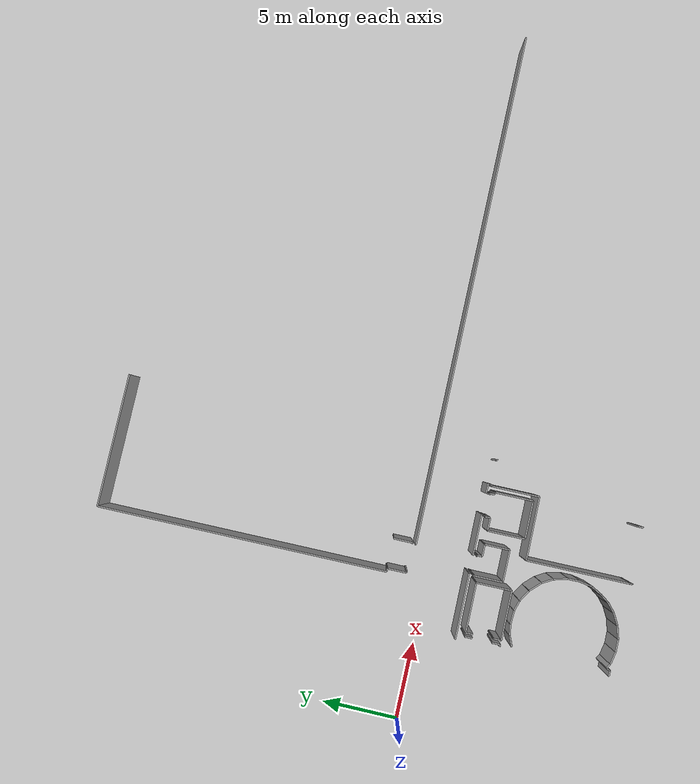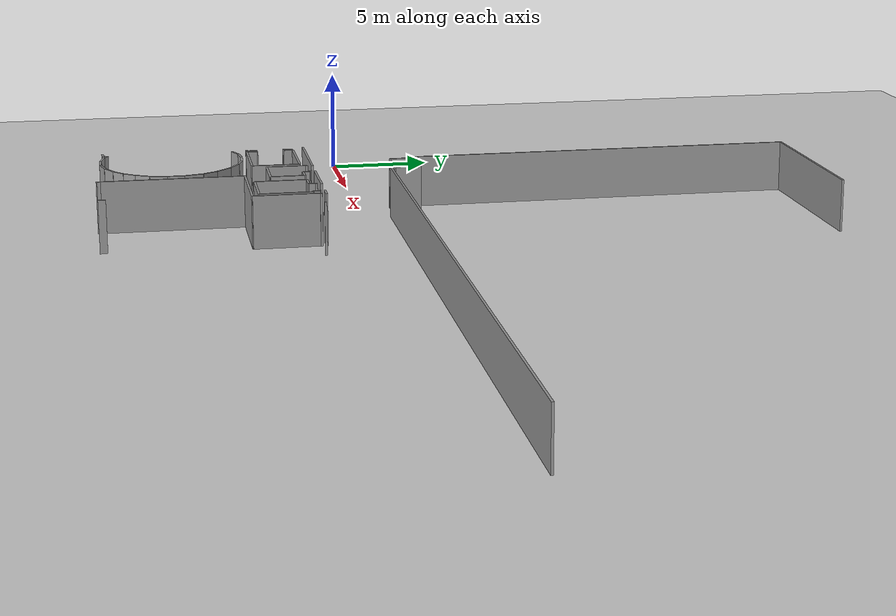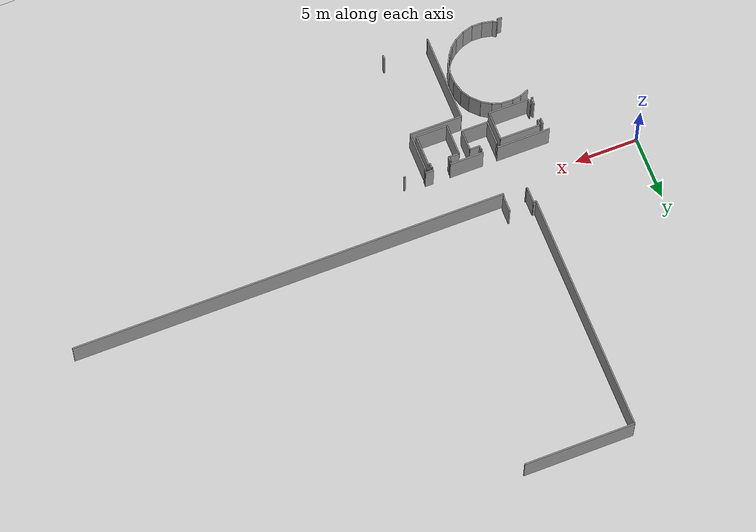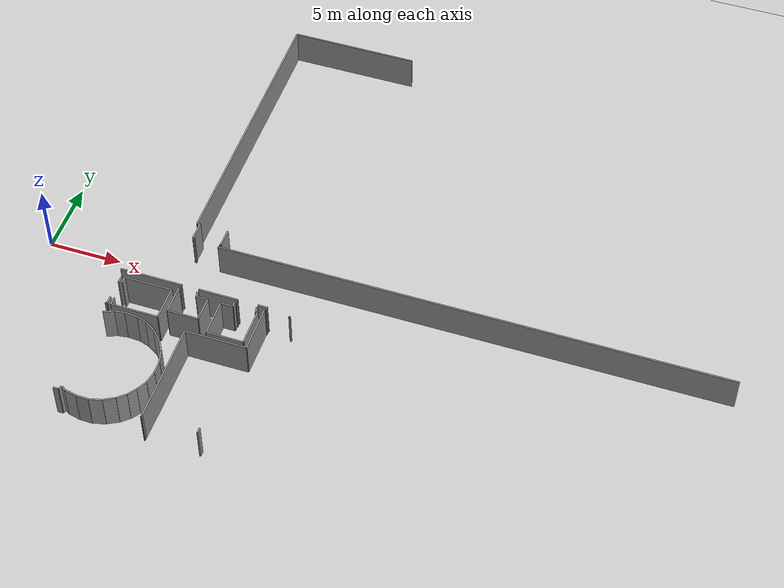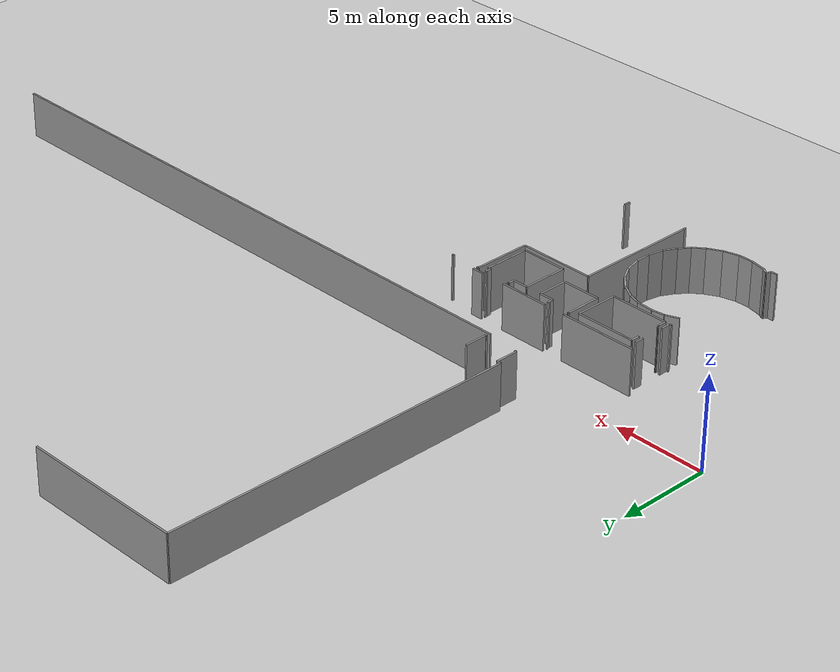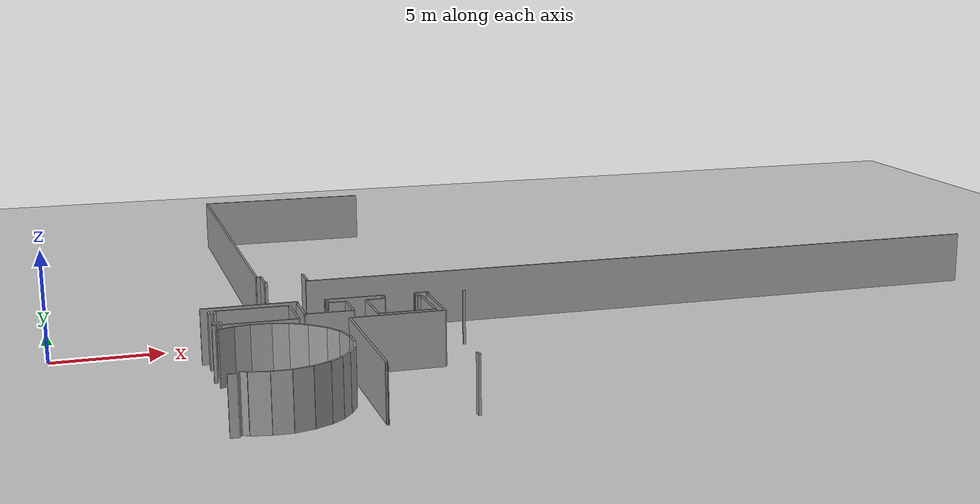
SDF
<sdf version="1.6">
 <world name="default">
  <model name="ground_plane">
   <static>1</static>
   <link name="link">
    <collision name="collision">
     <geometry><plane><normal>0 0 1</normal><size>100 100</size></plane></geometry>
     <surface><friction><ode><mu>100</mu><mu2>50</mu2></ode></friction></surface>
    </collision>
    <visual name="visual">
     <cast_shadows>0</cast_shadows>
     <geometry><plane><normal>0 0 1</normal><size>100 100</size></plane></geometry>
     <material>
      <script><uri>file://media/materials/scripts/gazebo.material</uri><name>Gazebo/Grey</name></script>
     </material>
    </visual>
   </link>
  </model>
  <model name="50045369">
   <static>1</static>
   <link name="Wall_100">
    <collision name="Wall_100_Collision">
     <geometry><box><size>0.492898223762 0.1 2.5</size></box></geometry>
     <pose>0.246449111881 0 1.25 0 0 0</pose>
    </collision>
    <visual name="Wall_100_Visual">
     <pose>0.246449111881 0 1.25 0 0 0</pose>
     <geometry><box><size>0.492898223762 0.1 2.5</size></box></geometry>
     <material>
      <script><uri>file://media/materials/scripts/gazebo.material</uri><name>Gazebo/Grey</name></script>
      <ambient>1 1 1 1</ambient>
     </material>
    </visual>
    <pose>52.5750055607 -24.7826888246 0 0 0 -1.57079632679</pose>
   </link>
   <link name="Wall_101">
    <collision name="Wall_101_Collision">
     <geometry><box><size>0.522004384989 0.1 2.5</size></box></geometry>
     <pose>0.261002192495 0 1.25 0 0 0</pose>
    </collision>
    <visual name="Wall_101_Visual">
     <pose>0.261002192495 0 1.25 0 0 0</pose>
     <geometry><box><size>0.522004384989 0.1 2.5</size></box></geometry>
     <material>
      <script><uri>file://media/materials/scripts/gazebo.material</uri><name>Gazebo/Grey</name></script>
      <ambient>1 1 1 1</ambient>
     </material>
    </visual>
    <pose>52.5750055607 -26.5570207493 0 0 0 -1.57079632679</pose>
   </link>
   <link name="Wall_102">
    <collision name="Wall_102_Collision">
     <geometry><box><size>0.132947793206 0.1 2.5</size></box></geometry>
     <pose>0.0664738966032 0 1.25 0 0 0</pose>
    </collision>
    <visual name="Wall_102_Visual">
     <pose>0.0664738966032 0 1.25 0 0 0</pose>
     <geometry><box><size>0.132947793206 0.1 2.5</size></box></geometry>
     <material>
      <script><uri>file://media/materials/scripts/gazebo.material</uri><name>Gazebo/Grey</name></script>
      <ambient>1 1 1 1</ambient>
     </material>
    </visual>
    <pose>52.5750055607 -27.0790251343 0 0 0 3.14159265359</pose>
   </link>
   <link name="Wall_105">
    <collision name="Wall_105_Collision">
     <geometry><box><size>0.736896253486 0.1 2.5</size></box></geometry>
     <pose>0.368448126743 0 1.25 0 0 0</pose>
    </collision>
    <visual name="Wall_105_Visual">
     <pose>0.368448126743 0 1.25 0 0 0</pose>
     <geometry><box><size>0.736896253486 0.1 2.5</size></box></geometry>
     <material>
      <script><uri>file://media/materials/scripts/gazebo.material</uri><name>Gazebo/Grey</name></script>
      <ambient>1 1 1 1</ambient>
     </material>
    </visual>
    <pose>52.6002986877 -27.8223126053 0 0 0 0.386976290998</pose>
   </link>
   <link name="Wall_106">
    <collision name="Wall_106_Collision">
     <geometry><box><size>0.682793621528 0.1 2.5</size></box></geometry>
     <pose>0.341396810764 0 1.25 0 0 0</pose>
    </collision>
    <visual name="Wall_106_Visual">
     <pose>0.341396810764 0 1.25 0 0 0</pose>
     <geometry><box><size>0.682793621528 0.1 2.5</size></box></geometry>
     <material>
      <script><uri>file://media/materials/scripts/gazebo.material</uri><name>Gazebo/Grey</name></script>
      <ambient>1 1 1 1</ambient>
     </material>
    </visual>
    <pose>53.2827047123 -27.5442153093 0 0 0 0.139317162471</pose>
   </link>
   <link name="Wall_107">
    <collision name="Wall_107_Collision">
     <geometry><box><size>0.899633806594 0.1 2.5</size></box></geometry>
     <pose>0.449816903297 0 1.25 0 0 0</pose>
    </collision>
    <visual name="Wall_107_Visual">
     <pose>0.449816903297 0 1.25 0 0 0</pose>
     <geometry><box><size>0.899633806594 0.1 2.5</size></box></geometry>
     <material>
      <script><uri>file://media/materials/scripts/gazebo.material</uri><name>Gazebo/Grey</name></script>
      <ambient>1 1 1 1</ambient>
     </material>
    </visual>
    <pose>53.958882781 -27.4493978583 0 0 0 -0.0653182466582</pose>
   </link>
   <link name="Wall_108">
    <collision name="Wall_108_Collision">
     <geometry><box><size>0.708735620556 0.1 2.5</size></box></geometry>
     <pose>0.354367810278 0 1.25 0 0 0</pose>
    </collision>
    <visual name="Wall_108_Visual">
     <pose>0.354367810278 0 1.25 0 0 0</pose>
     <geometry><box><size>0.708735620556 0.1 2.5</size></box></geometry>
     <material>
      <script><uri>file://media/materials/scripts/gazebo.material</uri><name>Gazebo/Grey</name></script>
      <ambient>1 1 1 1</ambient>
     </material>
    </visual>
    <pose>54.856598138 -27.5081185854 0 0 0 -0.315455622517</pose>
   </link>
   <link name="Wall_109">
    <collision name="Wall_109_Collision">
     <geometry><box><size>0.864625452946 0.1 2.5</size></box></geometry>
     <pose>0.432312726473 0 1.25 0 0 0</pose>
    </collision>
    <visual name="Wall_109_Visual">
     <pose>0.432312726473 0 1.25 0 0 0</pose>
     <geometry><box><size>0.864625452946 0.1 2.5</size></box></geometry>
     <material>
      <script><uri>file://media/materials/scripts/gazebo.material</uri><name>Gazebo/Grey</name></script>
      <ambient>1 1 1 1</ambient>
     </material>
    </visual>
    <pose>55.530361285 -27.7280035588 0 0 0 -0.55264691194</pose>
   </link>
   <link name="Wall_110">
    <collision name="Wall_110_Collision">
     <geometry><box><size>0.949028412 0.1 2.5</size></box></geometry>
     <pose>0.474514206 0 1.25 0 0 0</pose>
    </collision>
    <visual name="Wall_110_Visual">
     <pose>0.474514206 0 1.25 0 0 0</pose>
     <geometry><box><size>0.949028412 0.1 2.5</size></box></geometry>
     <material>
      <script><uri>file://media/materials/scripts/gazebo.material</uri><name>Gazebo/Grey</name></script>
      <ambient>1 1 1 1</ambient>
     </material>
    </visual>
    <pose>56.2662768898 -28.1818817324 0 0 0 -0.802445195372</pose>
   </link>
   <link name="Wall_111">
    <collision name="Wall_111_Collision">
     <geometry><box><size>0.782620833508 0.1 2.5</size></box></geometry>
     <pose>0.391310416754 0 1.25 0 0 0</pose>
    </collision>
    <visual name="Wall_111_Visual">
     <pose>0.391310416754 0 1.25 0 0 0</pose>
     <geometry><box><size>0.782620833508 0.1 2.5</size></box></geometry>
     <material>
      <script><uri>file://media/materials/scripts/gazebo.material</uri><name>Gazebo/Grey</name></script>
      <ambient>1 1 1 1</ambient>
     </material>
    </visual>
    <pose>56.9258047091 -28.864287757 0 0 0 -1.04508328709</pose>
   </link>
   <link name="Wall_112">
    <collision name="Wall_112_Collision">
     <geometry><box><size>0.924266578962 0.1 2.5</size></box></geometry>
     <pose>0.462133289481 0 1.25 0 0 0</pose>
    </collision>
    <visual name="Wall_112_Visual">
     <pose>0.462133289481 0 1.25 0 0 0</pose>
     <geometry><box><size>0.924266578962 0.1 2.5</size></box></geometry>
     <material>
      <script><uri>file://media/materials/scripts/gazebo.material</uri><name>Gazebo/Grey</name></script>
      <ambient>1 1 1 1</ambient>
     </material>
    </visual>
    <pose>57.318547234 -29.5412284325 0 0 0 -1.31484448749</pose>
   </link>
   <link name="Wall_113">
    <collision name="Wall_113_Collision">
     <geometry><box><size>0.802306256249 0.1 2.5</size></box></geometry>
     <pose>0.401153128125 0 1.25 0 0 0</pose>
    </collision>
    <visual name="Wall_113_Visual">
     <pose>0.401153128125 0 1.25 0 0 0</pose>
     <geometry><box><size>0.802306256249 0.1 2.5</size></box></geometry>
     <material>
      <script><uri>file://media/materials/scripts/gazebo.material</uri><name>Gazebo/Grey</name></script>
      <ambient>1 1 1 1</ambient>
     </material>
    </visual>
    <pose>57.5525404341 -30.4353849576 0 0 0 -1.56034043408</pose>
   </link>
   <link name="Wall_114">
    <collision name="Wall_114_Collision">
     <geometry><box><size>0.835919388811 0.1 2.5</size></box></geometry>
     <pose>0.417959694405 0 1.25 0 0 0</pose>
    </collision>
    <visual name="Wall_114_Visual">
     <pose>0.417959694405 0 1.25 0 0 0</pose>
     <geometry><box><size>0.835919388811 0.1 2.5</size></box></geometry>
     <material>
      <script><uri>file://media/materials/scripts/gazebo.material</uri><name>Gazebo/Grey</name></script>
      <ambient>1 1 1 1</ambient>
     </material>
    </visual>
    <pose>57.5609291093 -31.2376473579 0 0 0 -1.77209823326</pose>
   </link>
   <link name="Wall_115">
    <collision name="Wall_115_Collision">
     <geometry><box><size>0.751674255033 0.1 2.5</size></box></geometry>
     <pose>0.375837127516 0 1.25 0 0 0</pose>
    </collision>
    <visual name="Wall_115_Visual">
     <pose>0.375837127516 0 1.25 0 0 0</pose>
     <geometry><box><size>0.751674255033 0.1 2.5</size></box></geometry>
     <material>
      <script><uri>file://media/materials/scripts/gazebo.material</uri><name>Gazebo/Grey</name></script>
      <ambient>1 1 1 1</ambient>
     </material>
    </visual>
    <pose>57.3937911093 -32.0566871088 0 0 0 -2.06938733352</pose>
   </link>
   <link name="Wall_116">
    <collision name="Wall_116_Collision">
     <geometry><box><size>0.675281698217 0.1 2.5</size></box></geometry>
     <pose>0.337640849108 0 1.25 0 0 0</pose>
    </collision>
    <visual name="Wall_116_Visual">
     <pose>0.337640849108 0 1.25 0 0 0</pose>
     <geometry><box><size>0.675281698217 0.1 2.5</size></box></geometry>
     <material>
      <script><uri>file://media/materials/scripts/gazebo.material</uri><name>Gazebo/Grey</name></script>
      <ambient>1 1 1 1</ambient>
     </material>
    </visual>
    <pose>57.0343490833 -32.7168504337 0 0 0 -2.20684387689</pose>
   </link>
   <link name="Wall_117">
    <collision name="Wall_117_Collision">
     <geometry><box><size>0.705267646342 0.1 2.5</size></box></geometry>
     <pose>0.352633823171 0 1.25 0 0 0</pose>
    </collision>
    <visual name="Wall_117_Visual">
     <pose>0.352633823171 0 1.25 0 0 0</pose>
     <geometry><box><size>0.705267646342 0.1 2.5</size></box></geometry>
     <material>
      <script><uri>file://media/materials/scripts/gazebo.material</uri><name>Gazebo/Grey</name></script>
      <ambient>1 1 1 1</ambient>
     </material>
    </visual>
    <pose>56.6332178831 -33.2600807092 0 0 0 -2.43157852513</pose>
   </link>
   <link name="Wall_118">
    <collision name="Wall_118_Collision">
     <geometry><box><size>0.831691478733 0.1 2.5</size></box></geometry>
     <pose>0.415845739366 0 1.25 0 0 0</pose>
    </collision>
    <visual name="Wall_118_Visual">
     <pose>0.415845739366 0 1.25 0 0 0</pose>
     <geometry><box><size>0.831691478733 0.1 2.5</size></box></geometry>
     <material>
      <script><uri>file://media/materials/scripts/gazebo.material</uri><name>Gazebo/Grey</name></script>
      <ambient>1 1 1 1</ambient>
     </material>
    </visual>
    <pose>56.0983762829 -33.7198055353 0 0 0 -2.6497834776</pose>
   </link>
   <link name="Wall_119">
    <collision name="Wall_119_Collision">
     <geometry><box><size>0.859774283113 0.1 2.5</size></box></geometry>
     <pose>0.429887141557 0 1.25 0 0 0</pose>
    </collision>
    <visual name="Wall_119_Visual">
     <pose>0.429887141557 0 1.25 0 0 0</pose>
     <geometry><box><size>0.859774283113 0.1 2.5</size></box></geometry>
     <material>
      <script><uri>file://media/materials/scripts/gazebo.material</uri><name>Gazebo/Grey</name></script>
      <ambient>1 1 1 1</ambient>
     </material>
    </visual>
    <pose>55.3652569032 -34.1125480601 0 0 0 -2.87639081993</pose>
   </link>
   <link name="Wall_120">
    <collision name="Wall_120_Collision">
     <geometry><box><size>0.818676690542 0.1 2.5</size></box></geometry>
     <pose>0.409338345271 0 1.25 0 0 0</pose>
    </collision>
    <visual name="Wall_120_Visual">
     <pose>0.409338345271 0 1.25 0 0 0</pose>
     <geometry><box><size>0.818676690542 0.1 2.5</size></box></geometry>
     <material>
      <script><uri>file://media/materials/scripts/gazebo.material</uri><name>Gazebo/Grey</name></script>
      <ambient>1 1 1 1</ambient>
     </material>
    </visual>
    <pose>54.5355406565 -34.3378983826 0 0 0 3.13491677078</pose>
   </link>
   <link name="Wall_121">
    <collision name="Wall_121_Collision">
     <geometry><box><size>0.837468442148 0.1 2.5</size></box></geometry>
     <pose>0.418734221074 0 1.25 0 0 0</pose>
    </collision>
    <visual name="Wall_121_Visual">
     <pose>0.418734221074 0 1.25 0 0 0</pose>
     <geometry><box><size>0.837468442148 0.1 2.5</size></box></geometry>
     <material>
      <script><uri>file://media/materials/scripts/gazebo.material</uri><name>Gazebo/Grey</name></script>
      <ambient>1 1 1 1</ambient>
     </material>
    </visual>
    <pose>53.716882209 -34.3324330336 0 0 0 2.92996932254</pose>
   </link>
   <link name="Wall_122">
    <collision name="Wall_122_Collision">
     <geometry><box><size>0.33842890685 0.1 2.5</size></box></geometry>
     <pose>0.169214453425 0 1.25 0 0 0</pose>
    </collision>
    <visual name="Wall_122_Visual">
     <pose>0.169214453425 0 1.25 0 0 0</pose>
     <geometry><box><size>0.33842890685 0.1 2.5</size></box></geometry>
     <material>
      <script><uri>file://media/materials/scripts/gazebo.material</uri><name>Gazebo/Grey</name></script>
      <ambient>1 1 1 1</ambient>
     </material>
    </visual>
    <pose>52.8980966604 -34.1565250548 0 0 0 2.57598680455</pose>
   </link>
   <link name="Wall_123">
    <collision name="Wall_123_Collision">
     <geometry><box><size>0.262959482177 0.1 2.5</size></box></geometry>
     <pose>0.131479741089 0 1.25 0 0 0</pose>
    </collision>
    <visual name="Wall_123_Visual">
     <pose>0.131479741089 0 1.25 0 0 0</pose>
     <geometry><box><size>0.262959482177 0.1 2.5</size></box></geometry>
     <material>
      <script><uri>file://media/materials/scripts/gazebo.material</uri><name>Gazebo/Grey</name></script>
      <ambient>1 1 1 1</ambient>
     </material>
    </visual>
    <pose>52.6123732961 -33.975151727 0 0 0 -2.02514891599</pose>
   </link>
   <link name="Wall_124">
    <collision name="Wall_124_Collision">
     <geometry><box><size>0.360585936259 0.1 2.5</size></box></geometry>
     <pose>0.180292968129 0 1.25 0 0 0</pose>
    </collision>
    <visual name="Wall_124_Visual">
     <pose>0.180292968129 0 1.25 0 0 0</pose>
     <geometry><box><size>0.360585936259 0.1 2.5</size></box></geometry>
     <material>
      <script><uri>file://media/materials/scripts/gazebo.material</uri><name>Gazebo/Grey</name></script>
      <ambient>1 1 1 1</ambient>
     </material>
    </visual>
    <pose>52.4969654603 -34.2114327476 0 0 0 3.14159265359</pose>
   </link>
   <link name="Wall_128">
    <collision name="Wall_128_Collision">
     <geometry><box><size>0.506879349242 0.1 2.5</size></box></geometry>
     <pose>0.253439674621 0 1.25 0 0 0</pose>
    </collision>
    <visual name="Wall_128_Visual">
     <pose>0.253439674621 0 1.25 0 0 0</pose>
     <geometry><box><size>0.506879349242 0.1 2.5</size></box></geometry>
     <material>
      <script><uri>file://media/materials/scripts/gazebo.material</uri><name>Gazebo/Grey</name></script>
      <ambient>1 1 1 1</ambient>
     </material>
    </visual>
    <pose>52.8386133266 -27.0945314734 0 0 0 1.57079632679</pose>
   </link>
   <link name="Wall_129">
    <collision name="Wall_129_Collision">
     <geometry><box><size>0.0291061612278 0.1 2.5</size></box></geometry>
     <pose>0.0145530806139 0 1.25 0 0 0</pose>
    </collision>
    <visual name="Wall_129_Visual">
     <pose>0.0145530806139 0 1.25 0 0 0</pose>
     <geometry><box><size>0.0291061612278 0.1 2.5</size></box></geometry>
     <material>
      <script><uri>file://media/materials/scripts/gazebo.material</uri><name>Gazebo/Grey</name></script>
      <ambient>1 1 1 1</ambient>
     </material>
    </visual>
    <pose>52.8386133266 -26.5876521242 0 0 0 3.14159265359</pose>
   </link>
   <link name="Wall_130">
    <collision name="Wall_130_Collision">
     <geometry><box><size>0.467096692193 0.1 2.5</size></box></geometry>
     <pose>0.233548346096 0 1.25 0 0 0</pose>
    </collision>
    <visual name="Wall_130_Visual">
     <pose>0.233548346096 0 1.25 0 0 0</pose>
     <geometry><box><size>0.467096692193 0.1 2.5</size></box></geometry>
     <material>
      <script><uri>file://media/materials/scripts/gazebo.material</uri><name>Gazebo/Grey</name></script>
      <ambient>1 1 1 1</ambient>
     </material>
    </visual>
    <pose>52.8095071653 -25.2492771123 0 0 0 1.57079632679</pose>
   </link>
   <link name="Wall_131">
    <collision name="Wall_131_Collision">
     <geometry><box><size>3.23180070541 0.1 2.5</size></box></geometry>
     <pose>1.61590035271 0 1.25 0 0 0</pose>
    </collision>
    <visual name="Wall_131_Visual">
     <pose>1.61590035271 0 1.25 0 0 0</pose>
     <geometry><box><size>3.23180070541 0.1 2.5</size></box></geometry>
     <material>
      <script><uri>file://media/materials/scripts/gazebo.material</uri><name>Gazebo/Grey</name></script>
      <ambient>1 1 1 1</ambient>
     </material>
    </visual>
    <pose>52.8095071653 -24.7821804201 0 0 0 0.0</pose>
   </link>
   <link name="Wall_132">
    <collision name="Wall_132_Collision">
     <geometry><box><size>2.32353595374 0.1 2.5</size></box></geometry>
     <pose>1.16176797687 0 1.25 0 0 0</pose>
    </collision>
    <visual name="Wall_132_Visual">
     <pose>1.16176797687 0 1.25 0 0 0</pose>
     <geometry><box><size>2.32353595374 0.1 2.5</size></box></geometry>
     <material>
      <script><uri>file://media/materials/scripts/gazebo.material</uri><name>Gazebo/Grey</name></script>
      <ambient>1 1 1 1</ambient>
     </material>
    </visual>
    <pose>56.0413078707 -24.7821804201 0 0 0 -1.57079632679</pose>
   </link>
   <link name="Wall_133">
    <collision name="Wall_133_Collision">
     <geometry><box><size>3.20271407487 0.1 2.5</size></box></geometry>
     <pose>1.60135703743 0 1.25 0 0 0</pose>
    </collision>
    <visual name="Wall_133_Visual">
     <pose>1.60135703743 0 1.25 0 0 0</pose>
     <geometry><box><size>3.20271407487 0.1 2.5</size></box></geometry>
     <material>
      <script><uri>file://media/materials/scripts/gazebo.material</uri><name>Gazebo/Grey</name></script>
      <ambient>1 1 1 1</ambient>
     </material>
    </visual>
    <pose>56.0413078707 -27.1057163738 0 0 0 3.13810032713</pose>
   </link>
   <link name="Wall_134">
    <collision name="Wall_134_Collision">
     <geometry><box><size>1.93943630644 0.1 2.5</size></box></geometry>
     <pose>0.96971815322 0 1.25 0 0 0</pose>
    </collision>
    <visual name="Wall_134_Visual">
     <pose>0.96971815322 0 1.25 0 0 0</pose>
     <geometry><box><size>1.93943630644 0.1 2.5</size></box></geometry>
     <material>
      <script><uri>file://media/materials/scripts/gazebo.material</uri><name>Gazebo/Grey</name></script>
      <ambient>1 1 1 1</ambient>
     </material>
    </visual>
    <pose>56.4287121477 -26.433097137 0 0 0 1.57079632679</pose>
   </link>
   <link name="Wall_135">
    <collision name="Wall_135_Collision">
     <geometry><box><size>0.0632963680849 0.1 2.5</size></box></geometry>
     <pose>0.0316481840424 0 1.25 0 0 0</pose>
    </collision>
    <visual name="Wall_135_Visual">
     <pose>0.0316481840424 0 1.25 0 0 0</pose>
     <geometry><box><size>0.0632963680849 0.1 2.5</size></box></geometry>
     <material>
      <script><uri>file://media/materials/scripts/gazebo.material</uri><name>Gazebo/Grey</name></script>
      <ambient>1 1 1 1</ambient>
     </material>
    </visual>
    <pose>56.4287121477 -24.4936608306 0 0 0 0.0</pose>
   </link>
   <link name="Wall_136">
    <collision name="Wall_136_Collision">
     <geometry><box><size>0.095580057831 0.1 2.5</size></box></geometry>
     <pose>0.0477900289155 0 1.25 0 0 0</pose>
    </collision>
    <visual name="Wall_136_Visual">
     <pose>0.0477900289155 0 1.25 0 0 0</pose>
     <geometry><box><size>0.095580057831 0.1 2.5</size></box></geometry>
     <material>
      <script><uri>file://media/materials/scripts/gazebo.material</uri><name>Gazebo/Grey</name></script>
      <ambient>1 1 1 1</ambient>
     </material>
    </visual>
    <pose>57.6417654348 -24.4936608306 0 0 0 0.0</pose>
   </link>
   <link name="Wall_137">
    <collision name="Wall_137_Collision">
     <geometry><box><size>0.315973435862 0.1 2.5</size></box></geometry>
     <pose>0.157986717931 0 1.25 0 0 0</pose>
    </collision>
    <visual name="Wall_137_Visual">
     <pose>0.157986717931 0 1.25 0 0 0</pose>
     <geometry><box><size>0.315973435862 0.1 2.5</size></box></geometry>
     <material>
      <script><uri>file://media/materials/scripts/gazebo.material</uri><name>Gazebo/Grey</name></script>
      <ambient>1 1 1 1</ambient>
     </material>
    </visual>
    <pose>57.7373454927 -24.4936608306 0 0 0 -1.57079632679</pose>
   </link>
   <link name="Wall_138">
    <collision name="Wall_138_Collision">
     <geometry><box><size>0.78751866798 0.1 2.5</size></box></geometry>
     <pose>0.39375933399 0 1.25 0 0 0</pose>
    </collision>
    <visual name="Wall_138_Visual">
     <pose>0.39375933399 0 1.25 0 0 0</pose>
     <geometry><box><size>0.78751866798 0.1 2.5</size></box></geometry>
     <material>
      <script><uri>file://media/materials/scripts/gazebo.material</uri><name>Gazebo/Grey</name></script>
      <ambient>1 1 1 1</ambient>
     </material>
    </visual>
    <pose>57.7373454927 -24.8096342665 0 0 0 0.0</pose>
   </link>
   <link name="Wall_139">
    <collision name="Wall_139_Collision">
     <geometry><box><size>1.6347748721 0.1 2.5</size></box></geometry>
     <pose>0.817387436052 0 1.25 0 0 0</pose>
    </collision>
    <visual name="Wall_139_Visual">
     <pose>0.817387436052 0 1.25 0 0 0</pose>
     <geometry><box><size>1.6347748721 0.1 2.5</size></box></geometry>
     <material>
      <script><uri>file://media/materials/scripts/gazebo.material</uri><name>Gazebo/Grey</name></script>
      <ambient>1 1 1 1</ambient>
     </material>
    </visual>
    <pose>58.5248641607 -24.8096342665 0 0 0 -1.57079632679</pose>
   </link>
   <link name="Wall_140">
    <collision name="Wall_140_Collision">
     <geometry><box><size>2.09618253567 0.1 2.5</size></box></geometry>
     <pose>1.04809126783 0 1.25 0 0 0</pose>
    </collision>
    <visual name="Wall_140_Visual">
     <pose>1.04809126783 0 1.25 0 0 0</pose>
     <geometry><box><size>2.09618253567 0.1 2.5</size></box></geometry>
     <material>
      <script><uri>file://media/materials/scripts/gazebo.material</uri><name>Gazebo/Grey</name></script>
      <ambient>1 1 1 1</ambient>
     </material>
    </visual>
    <pose>58.5248641607 -26.4444091386 0 0 0 3.13619615007</pose>
   </link>
   <link name="Wall_141">
    <collision name="Wall_141_Collision">
     <geometry><box><size>2.46410981539 0.1 2.5</size></box></geometry>
     <pose>1.23205490769 0 1.25 0 0 0</pose>
    </collision>
    <visual name="Wall_141_Visual">
     <pose>1.23205490769 0 1.25 0 0 0</pose>
     <geometry><box><size>2.46410981539 0.1 2.5</size></box></geometry>
     <material>
      <script><uri>file://media/materials/scripts/gazebo.material</uri><name>Gazebo/Grey</name></script>
      <ambient>1 1 1 1</ambient>
     </material>
    </visual>
    <pose>59.4122843253 -27.2661180134 0 0 0 1.57079632679</pose>
   </link>
   <link name="Wall_142">
    <collision name="Wall_142_Collision">
     <geometry><box><size>0.829462044422 0.1 2.5</size></box></geometry>
     <pose>0.414731022211 0 1.25 0 0 0</pose>
    </collision>
    <visual name="Wall_142_Visual">
     <pose>0.414731022211 0 1.25 0 0 0</pose>
     <geometry><box><size>0.829462044422 0.1 2.5</size></box></geometry>
     <material>
      <script><uri>file://media/materials/scripts/gazebo.material</uri><name>Gazebo/Grey</name></script>
      <ambient>1 1 1 1</ambient>
     </material>
    </visual>
    <pose>59.4122843253 -24.802008198 0 0 0 0.0</pose>
   </link>
   <link name="Wall_143">
    <collision name="Wall_143_Collision">
     <geometry><box><size>0.341520765149 0.1 2.5</size></box></geometry>
     <pose>0.170760382574 0 1.25 0 0 0</pose>
    </collision>
    <visual name="Wall_143_Visual">
     <pose>0.170760382574 0 1.25 0 0 0</pose>
     <geometry><box><size>0.341520765149 0.1 2.5</size></box></geometry>
     <material>
      <script><uri>file://media/materials/scripts/gazebo.material</uri><name>Gazebo/Grey</name></script>
      <ambient>1 1 1 1</ambient>
     </material>
    </visual>
    <pose>60.2417463697 -24.802008198 0 0 0 1.57079632679</pose>
   </link>
   <link name="Wall_144">
    <collision name="Wall_144_Collision">
     <geometry><box><size>0.0871913825427 0.1 2.5</size></box></geometry>
     <pose>0.0435956912713 0 1.25 0 0 0</pose>
    </collision>
    <visual name="Wall_144_Visual">
     <pose>0.0435956912713 0 1.25 0 0 0</pose>
     <geometry><box><size>0.0871913825427 0.1 2.5</size></box></geometry>
     <material>
      <script><uri>file://media/materials/scripts/gazebo.material</uri><name>Gazebo/Grey</name></script>
      <ambient>1 1 1 1</ambient>
     </material>
    </visual>
    <pose>60.2417463697 -24.4604874329 0 0 0 0.0</pose>
   </link>
   <link name="Wall_145">
    <collision name="Wall_145_Collision">
     <geometry><box><size>0.0878268882463 0.1 2.5</size></box></geometry>
     <pose>0.0439134441232 0 1.25 0 0 0</pose>
    </collision>
    <visual name="Wall_145_Visual">
     <pose>0.0439134441232 0 1.25 0 0 0</pose>
     <geometry><box><size>0.0878268882463 0.1 2.5</size></box></geometry>
     <material>
      <script><uri>file://media/materials/scripts/gazebo.material</uri><name>Gazebo/Grey</name></script>
      <ambient>1 1 1 1</ambient>
     </material>
    </visual>
    <pose>61.67354072 -24.4604874329 0 0 0 0.0</pose>
   </link>
   <link name="Wall_146">
    <collision name="Wall_146_Collision">
     <geometry><box><size>0.332623685298 0.1 2.5</size></box></geometry>
     <pose>0.166311842649 0 1.25 0 0 0</pose>
    </collision>
    <visual name="Wall_146_Visual">
     <pose>0.166311842649 0 1.25 0 0 0</pose>
     <geometry><box><size>0.332623685298 0.1 2.5</size></box></geometry>
     <material>
      <script><uri>file://media/materials/scripts/gazebo.material</uri><name>Gazebo/Grey</name></script>
      <ambient>1 1 1 1</ambient>
     </material>
    </visual>
    <pose>61.7613676083 -24.4604874329 0 0 0 -1.57079632679</pose>
   </link>
   <link name="Wall_147">
    <collision name="Wall_147_Collision">
     <geometry><box><size>0.142861682184 0.1 2.5</size></box></geometry>
     <pose>0.0714308410918 0 1.25 0 0 0</pose>
    </collision>
    <visual name="Wall_147_Visual">
     <pose>0.0714308410918 0 1.25 0 0 0</pose>
     <geometry><box><size>0.142861682184 0.1 2.5</size></box></geometry>
     <material>
      <script><uri>file://media/materials/scripts/gazebo.material</uri><name>Gazebo/Grey</name></script>
      <ambient>1 1 1 1</ambient>
     </material>
    </visual>
    <pose>61.7613676083 -24.7931111182 0 0 0 0.0</pose>
   </link>
   <link name="Wall_148">
    <collision name="Wall_148_Collision">
     <geometry><box><size>2.48012455912 0.1 2.5</size></box></geometry>
     <pose>1.24006227956 0 1.25 0 0 0</pose>
    </collision>
    <visual name="Wall_148_Visual">
     <pose>1.24006227956 0 1.25 0 0 0</pose>
     <geometry><box><size>2.48012455912 0.1 2.5</size></box></geometry>
     <material>
      <script><uri>file://media/materials/scripts/gazebo.material</uri><name>Gazebo/Grey</name></script>
      <ambient>1 1 1 1</ambient>
     </material>
    </visual>
    <pose>61.9042292905 -24.7931111182 0 0 0 -1.57079632679</pose>
   </link>
   <link name="Wall_149">
    <collision name="Wall_149_Collision">
     <geometry><box><size>2.49195513016 0.1 2.5</size></box></geometry>
     <pose>1.24597756508 0 1.25 0 0 0</pose>
    </collision>
    <visual name="Wall_149_Visual">
     <pose>1.24597756508 0 1.25 0 0 0</pose>
     <geometry><box><size>2.49195513016 0.1 2.5</size></box></geometry>
     <material>
      <script><uri>file://media/materials/scripts/gazebo.material</uri><name>Gazebo/Grey</name></script>
      <ambient>1 1 1 1</ambient>
     </material>
    </visual>
    <pose>61.9042292905 -27.2732356773 0 0 0 3.13873639287</pose>
   </link>
   <link name="Wall_150">
    <collision name="Wall_150_Collision">
     <geometry><box><size>6.76927965428 0.1 2.5</size></box></geometry>
     <pose>3.38463982714 0 1.25 0 0 0</pose>
    </collision>
    <visual name="Wall_150_Visual">
     <pose>3.38463982714 0 1.25 0 0 0</pose>
     <geometry><box><size>6.76927965428 0.1 2.5</size></box></geometry>
     <material>
      <script><uri>file://media/materials/scripts/gazebo.material</uri><name>Gazebo/Grey</name></script>
      <ambient>1 1 1 1</ambient>
     </material>
    </visual>
    <pose>58.112420959 -34.3799688602 0 0 0 1.57079632679</pose>
   </link>
   <link name="Wall_151">
    <collision name="Wall_151_Collision">
     <geometry><box><size>4.13256648978 0.1 2.5</size></box></geometry>
     <pose>2.06628324489 0 1.25 0 0 0</pose>
    </collision>
    <visual name="Wall_151_Visual">
     <pose>2.06628324489 0 1.25 0 0 0</pose>
     <geometry><box><size>4.13256648978 0.1 2.5</size></box></geometry>
     <material>
      <script><uri>file://media/materials/scripts/gazebo.material</uri><name>Gazebo/Grey</name></script>
      <ambient>1 1 1 1</ambient>
     </material>
    </visual>
    <pose>58.112420959 -27.6106892059 0 0 0 0.0</pose>
   </link>
   <link name="Wall_152">
    <collision name="Wall_152_Collision">
     <geometry><box><size>3.14588033428 0.1 2.5</size></box></geometry>
     <pose>1.57294016714 0 1.25 0 0 0</pose>
    </collision>
    <visual name="Wall_152_Visual">
     <pose>1.57294016714 0 1.25 0 0 0</pose>
     <geometry><box><size>3.14588033428 0.1 2.5</size></box></geometry>
     <material>
      <script><uri>file://media/materials/scripts/gazebo.material</uri><name>Gazebo/Grey</name></script>
      <ambient>1 1 1 1</ambient>
     </material>
    </visual>
    <pose>62.2449874488 -27.6106892059 0 0 0 1.57079632679</pose>
   </link>
   <link name="Wall_153">
    <collision name="Wall_153_Collision">
     <geometry><box><size>0.103714530838 0.1 2.5</size></box></geometry>
     <pose>0.051857265419 0 1.25 0 0 0</pose>
    </collision>
    <visual name="Wall_153_Visual">
     <pose>0.051857265419 0 1.25 0 0 0</pose>
     <geometry><box><size>0.103714530838 0.1 2.5</size></box></geometry>
     <material>
      <script><uri>file://media/materials/scripts/gazebo.material</uri><name>Gazebo/Grey</name></script>
      <ambient>1 1 1 1</ambient>
     </material>
    </visual>
    <pose>62.2449874488 -24.4648088717 0 0 0 0.0</pose>
   </link>
   <link name="Wall_154">
    <collision name="Wall_154_Collision">
     <geometry><box><size>0.112103206126 0.1 2.5</size></box></geometry>
     <pose>0.0560516030631 0 1.25 0 0 0</pose>
    </collision>
    <visual name="Wall_154_Visual">
     <pose>0.0560516030631 0 1.25 0 0 0</pose>
     <geometry><box><size>0.112103206126 0.1 2.5</size></box></geometry>
     <material>
      <script><uri>file://media/materials/scripts/gazebo.material</uri><name>Gazebo/Grey</name></script>
      <ambient>1 1 1 1</ambient>
     </material>
    </visual>
    <pose>63.8908201201 -24.4648088717 0 0 0 0.0</pose>
   </link>
   <link name="Wall_157">
    <collision name="Wall_157_Collision">
     <geometry><box><size>0.353595373518 0.1 2.5</size></box></geometry>
     <pose>0.176797686759 0 1.25 0 0 0</pose>
    </collision>
    <visual name="Wall_157_Visual">
     <pose>0.176797686759 0 1.25 0 0 0</pose>
     <geometry><box><size>0.353595373518 0.1 2.5</size></box></geometry>
     <material>
      <script><uri>file://media/materials/scripts/gazebo.material</uri><name>Gazebo/Grey</name></script>
      <ambient>1 1 1 1</ambient>
     </material>
    </visual>
    <pose>61.7754758349 -34.1833433955 0 0 0 -1.57079632679</pose>
   </link>
   <link name="Wall_158">
    <collision name="Wall_158_Collision">
     <geometry><box><size>0.0165231482952 0.1 2.5</size></box></geometry>
     <pose>0.00826157414762 0 1.25 0 0 0</pose>
    </collision>
    <visual name="Wall_158_Visual">
     <pose>0.00826157414762 0 1.25 0 0 0</pose>
     <geometry><box><size>0.0165231482952 0.1 2.5</size></box></geometry>
     <material>
      <script><uri>file://media/materials/scripts/gazebo.material</uri><name>Gazebo/Grey</name></script>
      <ambient>1 1 1 1</ambient>
     </material>
    </visual>
    <pose>58.1257665788 -34.536938769 0 0 0 3.14159265359</pose>
   </link>
   <link name="Wall_159">
    <collision name="Wall_159_Collision">
     <geometry><box><size>0.157002066731 0.1 2.5</size></box></geometry>
     <pose>0.0785010333654 0 1.25 0 0 0</pose>
    </collision>
    <visual name="Wall_159_Visual">
     <pose>0.0785010333654 0 1.25 0 0 0</pose>
     <geometry><box><size>0.157002066731 0.1 2.5</size></box></geometry>
     <material>
      <script><uri>file://media/materials/scripts/gazebo.material</uri><name>Gazebo/Grey</name></script>
      <ambient>1 1 1 1</ambient>
     </material>
    </visual>
    <pose>58.1092434305 -34.536938769 0 0 0 1.55055617615</pose>
   </link>
   <link name="Wall_209">
    <collision name="Wall_209_Collision">
     <geometry><box><size>19.0590702552 0.1 2.5</size></box></geometry>
     <pose>9.52953512758 0 1.25 0 0 0</pose>
    </collision>
    <visual name="Wall_209_Visual">
     <pose>9.52953512758 0 1.25 0 0 0</pose>
     <geometry><box><size>19.0590702552 0.1 2.5</size></box></geometry>
     <material>
      <script><uri>file://media/materials/scripts/gazebo.material</uri><name>Gazebo/Grey</name></script>
      <ambient>1 1 1 1</ambient>
     </material>
    </visual>
    <pose>55.4652855009 -19.0590702552 0 0 0 1.57079632679</pose>
   </link>
   <link name="Wall_210">
    <collision name="Wall_210_Collision">
     <geometry><box><size>8.69931047631 0.1 2.5</size></box></geometry>
     <pose>4.34965523816 0 1.25 0 0 0</pose>
    </collision>
    <visual name="Wall_210_Visual">
     <pose>4.34965523816 0 1.25 0 0 0</pose>
     <geometry><box><size>8.69931047631 0.1 2.5</size></box></geometry>
     <material>
      <script><uri>file://media/materials/scripts/gazebo.material</uri><name>Gazebo/Grey</name></script>
      <ambient>1 1 1 1</ambient>
     </material>
    </visual>
    <pose>55.4652855009 -0.0 0 0 0 0.0</pose>
   </link>
   <link name="Wall_215">
    <collision name="Wall_215_Collision">
     <geometry><box><size>1.24482857234 0.1 2.5</size></box></geometry>
     <pose>0.622414286168 0 1.25 0 0 0</pose>
    </collision>
    <visual name="Wall_215_Visual">
     <pose>0.622414286168 0 1.25 0 0 0</pose>
     <geometry><box><size>1.24482857234 0.1 2.5</size></box></geometry>
     <material>
      <script><uri>file://media/materials/scripts/gazebo.material</uri><name>Gazebo/Grey</name></script>
      <ambient>1 1 1 1</ambient>
     </material>
    </visual>
    <pose>57.6176162181 -19.0449620285 0 0 0 -1.57079632679</pose>
   </link>
   <link name="Wall_216">
    <collision name="Wall_216_Collision">
     <geometry><box><size>0.0757522798767 0.1 2.5</size></box></geometry>
     <pose>0.0378761399384 0 1.25 0 0 0</pose>
    </collision>
    <visual name="Wall_216_Visual">
     <pose>0.0378761399384 0 1.25 0 0 0</pose>
     <geometry><box><size>0.0757522798767 0.1 2.5</size></box></geometry>
     <material>
      <script><uri>file://media/materials/scripts/gazebo.material</uri><name>Gazebo/Grey</name></script>
      <ambient>1 1 1 1</ambient>
     </material>
    </visual>
    <pose>57.6176162181 -20.2897906009 0 0 0 3.14159265359</pose>
   </link>
   <link name="Wall_217">
    <collision name="Wall_217_Collision">
     <geometry><box><size>0.109815385593 0.1 2.5</size></box></geometry>
     <pose>0.0549076927965 0 1.25 0 0 0</pose>
    </collision>
    <visual name="Wall_217_Visual">
     <pose>0.0549076927965 0 1.25 0 0 0</pose>
     <geometry><box><size>0.109815385593 0.1 2.5</size></box></geometry>
     <material>
      <script><uri>file://media/materials/scripts/gazebo.material</uri><name>Gazebo/Grey</name></script>
      <ambient>1 1 1 1</ambient>
     </material>
    </visual>
    <pose>55.7883766007 -20.2897906009 0 0 0 3.14159265359</pose>
   </link>
   <link name="Wall_218">
    <collision name="Wall_218_Collision">
     <geometry><box><size>1.23885481872 0.1 2.5</size></box></geometry>
     <pose>0.619427409361 0 1.25 0 0 0</pose>
    </collision>
    <visual name="Wall_218_Visual">
     <pose>0.619427409361 0 1.25 0 0 0</pose>
     <geometry><box><size>1.23885481872 0.1 2.5</size></box></geometry>
     <material>
      <script><uri>file://media/materials/scripts/gazebo.material</uri><name>Gazebo/Grey</name></script>
      <ambient>1 1 1 1</ambient>
     </material>
    </visual>
    <pose>55.6785612151 -20.2897906009 0 0 0 1.57079632679</pose>
   </link>
   <link name="Wall_219">
    <collision name="Wall_219_Collision">
     <geometry><box><size>0.213430784792 0.1 2.5</size></box></geometry>
     <pose>0.106715392396 0 1.25 0 0 0</pose>
    </collision>
    <visual name="Wall_219_Visual">
     <pose>0.106715392396 0 1.25 0 0 0</pose>
     <geometry><box><size>0.213430784792 0.1 2.5</size></box></geometry>
     <material>
      <script><uri>file://media/materials/scripts/gazebo.material</uri><name>Gazebo/Grey</name></script>
      <ambient>1 1 1 1</ambient>
     </material>
    </visual>
    <pose>55.6785612151 -19.0509357821 0 0 0 -3.10347048835</pose>
   </link>
   <link name="Wall_223">
    <collision name="Wall_223_Collision">
     <geometry><box><size>34.3776810397 0.1 2.5</size></box></geometry>
     <pose>17.1888405198 0 1.25 0 0 0</pose>
    </collision>
    <visual name="Wall_223_Visual">
     <pose>17.1888405198 0 1.25 0 0 0</pose>
     <geometry><box><size>34.3776810397 0.1 2.5</size></box></geometry>
     <material>
      <script><uri>file://media/materials/scripts/gazebo.material</uri><name>Gazebo/Grey</name></script>
      <ambient>1 1 1 1</ambient>
     </material>
    </visual>
    <pose>57.5123764736 -20.5089129675 0 0 0 0.0</pose>
   </link>
   <link name="Wall_231">
    <collision name="Wall_231_Collision">
     <geometry><box><size>0.65393536907 0.1 2.5</size></box></geometry>
     <pose>0.326967684535 0 1.25 0 0 0</pose>
    </collision>
    <visual name="Wall_231_Visual">
     <pose>0.326967684535 0 1.25 0 0 0</pose>
     <geometry><box><size>0.65393536907 0.1 2.5</size></box></geometry>
     <material>
      <script><uri>file://media/materials/scripts/gazebo.material</uri><name>Gazebo/Grey</name></script>
      <ambient>1 1 1 1</ambient>
     </material>
    </visual>
    <pose>62.3658606336 -24.2216643894 0 0 0 3.14159265359</pose>
   </link>
   <link name="Wall_232">
    <collision name="Wall_232_Collision">
     <geometry><box><size>2.67725842839 0.1 2.5</size></box></geometry>
     <pose>1.3386292142 0 1.25 0 0 0</pose>
    </collision>
    <visual name="Wall_232_Visual">
     <pose>1.3386292142 0 1.25 0 0 0</pose>
     <geometry><box><size>2.67725842839 0.1 2.5</size></box></geometry>
     <material>
      <script><uri>file://media/materials/scripts/gazebo.material</uri><name>Gazebo/Grey</name></script>
      <ambient>1 1 1 1</ambient>
     </material>
    </visual>
    <pose>60.3543579804 -24.2216643894 0 0 0 3.14159265359</pose>
   </link>
   <link name="Wall_233">
    <collision name="Wall_233_Collision">
     <geometry><box><size>4.24111086397 0.1 2.5</size></box></geometry>
     <pose>2.12055543199 0 1.25 0 0 0</pose>
    </collision>
    <visual name="Wall_233_Visual">
     <pose>2.12055543199 0 1.25 0 0 0</pose>
     <geometry><box><size>4.24111086397 0.1 2.5</size></box></geometry>
     <material>
      <script><uri>file://media/materials/scripts/gazebo.material</uri><name>Gazebo/Grey</name></script>
      <ambient>1 1 1 1</ambient>
     </material>
    </visual>
    <pose>56.5146325188 -24.2216643894 0 0 0 3.14159265359</pose>
   </link>
   <pose>-45.95 21.8978774109 0 0 0 0</pose>
  </model>
 </world>
</sdf>
